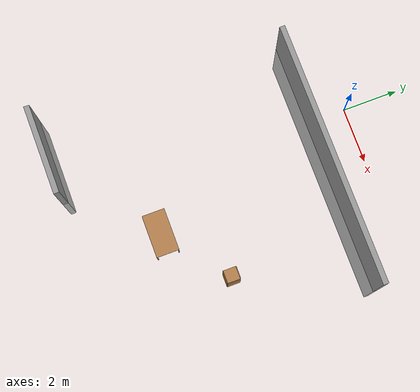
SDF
<sdf version="1.7">
 <world name="default">
  <light name="sun" type="directional">
   <pose>0 0 10 0 -0 0</pose>
   <diffuse>0.8 0.8 0.8 1</diffuse>
   <specular>0.2 0.2 0.2 1</specular>
   <attenuation>
    <range>1000</range>
    <constant>0.9</constant>
    <linear>0.01</linear>
    <quadratic>0.001</quadratic>
   </attenuation>
   <direction>-0.5 0.1 -0.9</direction>
   <spot><inner_angle>0</inner_angle><outer_angle>0</outer_angle><falloff>0</falloff></spot>
  </light>
  <gravity>0 0 -9.8</gravity>
  <magnetic_field>6e-06 2.3e-05 -4.2e-05</magnetic_field>
  <atmosphere type="adiabatic"/>
  <physics type="ode">
   <max_step_size>0.001</max_step_size>
   <real_time_factor>1</real_time_factor>
   <real_time_update_rate>1000</real_time_update_rate>
  </physics>
  <scene><ambient>0.4 0.4 0.4 1</ambient><background>0.7 0.7 0.7 1</background><shadows>1</shadows></scene>
  <spherical_coordinates>
   <surface_model>EARTH_WGS84</surface_model>
   <latitude_deg>0</latitude_deg>
   <longitude_deg>0</longitude_deg>
   <elevation>0</elevation>
   <heading_deg>0</heading_deg>
  </spherical_coordinates>
  <model name="ground_plane">
   <static>1</static>
   <link name="link">
    <collision name="collision">
     <geometry><plane><normal>0 0 1</normal><size>100 100</size></plane></geometry>
     <surface>
      <contact><collide_bitmask>65535</collide_bitmask></contact>
      <friction><ode><mu>100</mu><mu2>50</mu2></ode></friction>
     </surface>
    </collision>
    <visual name="visual">
     <cast_shadows>0</cast_shadows>
     <geometry><plane><normal>0 0 1</normal><size>100 100</size></plane></geometry>
     <material>
      <script><uri>file://media/materials/scripts/gazebo.material</uri><name>Gazebo/Grey</name></script>
     </material>
    </visual>
   </link>
  </model>
  <model name="table">
   <static>1</static>
   <link name="link">
    <collision name="surface">
     <pose>0 0 1 0 -0 0</pose>
     <geometry><box><size>1.5 0.8 0.03</size></box></geometry>
     <surface><friction><ode><mu>0.6</mu><mu2>0.6</mu2></ode></friction></surface>
    </collision>
    <visual name="visual1">
     <pose>0 0 1 0 -0 0</pose>
     <geometry><box><size>1.5 0.8 0.03</size></box></geometry>
     <material>
      <script><uri>file://media/materials/scripts/gazebo.material</uri><name>Gazebo/Wood</name></script>
     </material>
    </visual>
    <collision name="front_left_leg">
     <pose>0.68 0.38 0.5 0 -0 0</pose>
     <geometry><cylinder><radius>0.02</radius><length>1</length></cylinder></geometry>
    </collision>
    <visual name="front_left_leg">
     <pose>0.68 0.38 0.5 0 -0 0</pose>
     <geometry><cylinder><radius>0.02</radius><length>1</length></cylinder></geometry>
     <material>
      <script><uri>file://media/materials/scripts/gazebo.material</uri><name>Gazebo/Grey</name></script>
     </material>
    </visual>
    <collision name="front_right_leg">
     <pose>0.68 -0.38 0.5 0 -0 0</pose>
     <geometry><cylinder><radius>0.02</radius><length>1</length></cylinder></geometry>
    </collision>
    <visual name="front_right_leg">
     <pose>0.68 -0.38 0.5 0 -0 0</pose>
     <geometry><cylinder><radius>0.02</radius><length>1</length></cylinder></geometry>
     <material>
      <script><uri>file://media/materials/scripts/gazebo.material</uri><name>Gazebo/Grey</name></script>
     </material>
    </visual>
    <collision name="back_right_leg">
     <pose>-0.68 -0.38 0.5 0 -0 0</pose>
     <geometry><cylinder><radius>0.02</radius><length>1</length></cylinder></geometry>
    </collision>
    <visual name="back_right_leg">
     <pose>-0.68 -0.38 0.5 0 -0 0</pose>
     <geometry><cylinder><radius>0.02</radius><length>1</length></cylinder></geometry>
     <material>
      <script><uri>file://media/materials/scripts/gazebo.material</uri><name>Gazebo/Grey</name></script>
     </material>
    </visual>
    <collision name="back_left_leg">
     <pose>-0.68 0.38 0.5 0 -0 0</pose>
     <geometry><cylinder><radius>0.02</radius><length>1</length></cylinder></geometry>
    </collision>
    <visual name="back_left_leg">
     <pose>-0.68 0.38 0.5 0 -0 0</pose>
     <geometry><cylinder><radius>0.02</radius><length>1</length></cylinder></geometry>
     <material>
      <script><uri>file://media/materials/scripts/gazebo.material</uri><name>Gazebo/Grey</name></script>
     </material>
    </visual>
   </link>
   <pose>2.11283 -7.65134 0.265265 0 -0 0</pose>
  </model>
  <model name="cabinet">
   <static>1</static>
   <link name="cabinet_bottom_plate">
    <inertial>
     <pose>0 0 -1 0 -0 0</pose>
     <inertia><ixx>2.05</ixx><ixy>0</ixy><ixz>0</ixz><iyy>2.05</iyy><iyz>0</iyz><izz>2.05</izz></inertia>
     <mass>25</mass>
    </inertial>
    <collision name="cabinet_bottom_plate_geom">
     <pose>0 0 0.01 0 -0 0</pose>
     <geometry><box><size>0.45 0.45 0.02</size></box></geometry>
    </collision>
    <visual name="cabinet_bottom_plate_geom_visual">
     <pose>0 0 0.01 0 -0 0</pose>
     <geometry><box><size>0.45 0.45 0.02</size></box></geometry>
     <material>
      <script><uri>file://media/materials/scripts/gazebo.material</uri><name>Gazebo/Wood</name></script>
     </material>
    </visual>
    <collision name="cabinet_bottom_plate_geom_cabinet_back_plate">
     <pose>0.235 0 0.51 0 -0 0</pose>
     <geometry><box><size>0.02 0.45 1.02</size></box></geometry>
    </collision>
    <visual name="cabinet_bottom_plate_geom_cabinet_back_plate_visual">
     <pose>0.235 0 0.51 0 -0 0</pose>
     <geometry><box><size>0.02 0.45 1.02</size></box></geometry>
     <material>
      <script><uri>file://media/materials/scripts/gazebo.material</uri><name>Gazebo/Wood</name></script>
     </material>
    </visual>
    <collision name="cabinet_bottom_plate_geom_cabinet_left_plate">
     <pose>0 0.235 0.51 0 -0 0</pose>
     <geometry><box><size>0.45 0.02 1.02</size></box></geometry>
    </collision>
    <visual name="cabinet_bottom_plate_geom_cabinet_left_plate_visual">
     <pose>0 0.235 0.51 0 -0 0</pose>
     <geometry><box><size>0.45 0.02 1.02</size></box></geometry>
     <material>
      <script><uri>file://media/materials/scripts/gazebo.material</uri><name>Gazebo/Wood</name></script>
     </material>
    </visual>
    <collision name="cabinet_bottom_plate_geom_cabinet_middle_plate">
     <pose>0 0 0.51 0 -0 0</pose>
     <geometry><box><size>0.45 0.45 0.02</size></box></geometry>
    </collision>
    <visual name="cabinet_bottom_plate_geom_cabinet_middle_plate_visual">
     <pose>0 0 0.51 0 -0 0</pose>
     <geometry><box><size>0.45 0.45 0.02</size></box></geometry>
     <material>
      <script><uri>file://media/materials/scripts/gazebo.material</uri><name>Gazebo/Wood</name></script>
     </material>
    </visual>
    <collision name="cabinet_bottom_plate_geom_cabinet_right_plate">
     <pose>0 -0.235 0.51 0 -0 0</pose>
     <geometry><box><size>0.45 0.02 1.02</size></box></geometry>
    </collision>
    <visual name="cabinet_bottom_plate_geom_cabinet_right_plate_visual">
     <pose>0 -0.235 0.51 0 -0 0</pose>
     <geometry><box><size>0.45 0.02 1.02</size></box></geometry>
     <material>
      <script><uri>file://media/materials/scripts/gazebo.material</uri><name>Gazebo/Wood</name></script>
     </material>
    </visual>
    <collision name="cabinet_bottom_plate_geom_cabinet_top_plate">
     <pose>0 0 1.01 0 -0 0</pose>
     <geometry><box><size>0.45 0.45 0.02</size></box></geometry>
    </collision>
    <visual name="cabinet_bottom_plate_geom_cabinet_top_plate_visual">
     <pose>0 0 1.01 0 -0 0</pose>
     <geometry><box><size>0.45 0.45 0.02</size></box></geometry>
     <material>
      <script><uri>file://media/materials/scripts/gazebo.material</uri><name>Gazebo/Wood</name></script>
     </material>
    </visual>
   </link>
   <pose>4.26282 -5.89572 0.191258 0 -0 0</pose>
  </model>
  <model name="unit_box">
   <pose>6566.2 277.839 -422.043 -1.57011 -0.849148 -3.1413</pose>
   <link name="link">
    <inertial>
     <mass>1</mass>
     <inertia>
      <ixx>0.166667</ixx>
      <ixy>0</ixy>
      <ixz>0</ixz>
      <iyy>0.166667</iyy>
      <iyz>0</iyz>
      <izz>0.166667</izz>
     </inertia>
    </inertial>
    <collision name="collision"><geometry><box><size>0.00134141 1097.04 1</size></box></geometry></collision>
    <visual name="visual">
     <geometry><box><size>0.00134141 1097.04 1</size></box></geometry>
     <material>
      <script><name>Gazebo/Grey</name><uri>file://media/materials/scripts/gazebo.material</uri></script>
     </material>
    </visual>
   </link>
  </model>
  <model name="Untitled_0">
   <link name="link_0">
    <inertial>
     <mass>2.45679</mass>
     <inertia><ixx>3.11615</ixx><ixy>0</ixy><ixz>0</ixz><iyy>5.20355</iyy><iyz>0</iyz><izz>2.1033</izz></inertia>
    </inertial>
    <pose>-1.76957 -4.53759 0 0 -0 0</pose>
    <visual name="visual">
     <geometry><box><size>3.19915 0.197074 3.89638</size></box></geometry>
     <material>
      <lighting>1</lighting>
      <script><uri>file://media/materials/scripts/gazebo.material</uri><name>Gazebo/Grey</name></script>
      <shader type="pixel"/>
     </material>
    </visual>
    <collision name="collision">
     <geometry><box><size>3.19915 0.197074 3.89638</size></box></geometry>
     <surface>
      <friction>
       <ode><mu>1</mu><mu2>1</mu2><fdir1>0 0 0</fdir1><slip1>0</slip1><slip2>0</slip2></ode>
       <torsional>
        <coefficient>1</coefficient>
        <patch_radius>0</patch_radius>
        <surface_radius>0</surface_radius>
        <use_patch_radius>1</use_patch_radius>
        <ode><slip>0</slip></ode>
       </torsional>
      </friction>
      <bounce><restitution_coefficient>0</restitution_coefficient><threshold>1e+06</threshold></bounce>
      <contact>
       <collide_without_contact>0</collide_without_contact>
       <collide_without_contact_bitmask>1</collide_without_contact_bitmask>
       <collide_bitmask>1</collide_bitmask>
       <ode>
        <soft_cfm>0</soft_cfm>
        <soft_erp>0.2</soft_erp>
        <kp>1e+13</kp>
        <kd>1</kd>
        <max_vel>0.01</max_vel>
        <min_depth>0</min_depth>
       </ode>
       <bullet>
        <split_impulse>1</split_impulse>
        <split_impulse_penetration_threshold>-0.01</split_impulse_penetration_threshold>
        <soft_cfm>0</soft_cfm>
        <soft_erp>0.2</soft_erp>
        <kp>1e+13</kp>
        <kd>1</kd>
       </bullet>
      </contact>
     </surface>
    </collision>
   </link>
   <link name="link_1">
    <inertial>
     <mass>7.87337</mass>
     <inertia><ixx>12.6121</ixx><ixy>0</ixy><ixz>0</ixz><iyy>70.3885</iyy><iyz>0</iyz><izz>57.8244</izz></inertia>
    </inertial>
    <pose>1.76957 4.53764 0 0 -0 0</pose>
    <visual name="visual">
     <geometry><box><size>9.38589 0.191416 4.38016</size></box></geometry>
     <material>
      <lighting>1</lighting>
      <script><uri>file://media/materials/scripts/gazebo.material</uri><name>Gazebo/Grey</name></script>
      <shader type="pixel"/>
     </material>
    </visual>
    <collision name="collision">
     <geometry><box><size>9.38589 0.191416 4.38016</size></box></geometry>
     <surface>
      <friction>
       <ode><mu>1</mu><mu2>1</mu2><fdir1>0 0 0</fdir1><slip1>0</slip1><slip2>0</slip2></ode>
       <torsional>
        <coefficient>1</coefficient>
        <patch_radius>0</patch_radius>
        <surface_radius>0</surface_radius>
        <use_patch_radius>1</use_patch_radius>
        <ode><slip>0</slip></ode>
       </torsional>
      </friction>
      <bounce><restitution_coefficient>0</restitution_coefficient><threshold>1e+06</threshold></bounce>
      <contact>
       <collide_without_contact>0</collide_without_contact>
       <collide_without_contact_bitmask>1</collide_without_contact_bitmask>
       <collide_bitmask>1</collide_bitmask>
       <ode>
        <soft_cfm>0</soft_cfm>
        <soft_erp>0.2</soft_erp>
        <kp>1e+13</kp>
        <kd>1</kd>
        <max_vel>0.01</max_vel>
        <min_depth>0</min_depth>
       </ode>
       <bullet>
        <split_impulse>1</split_impulse>
        <split_impulse_penetration_threshold>-0.01</split_impulse_penetration_threshold>
        <soft_cfm>0</soft_cfm>
        <soft_erp>0.2</soft_erp>
        <kp>1e+13</kp>
        <kd>1</kd>
       </bullet>
      </contact>
     </surface>
    </collision>
   </link>
   <static>1</static>
   <allow_auto_disable>0</allow_auto_disable>
   <pose>-0.071806 -5.89659 0 0 -0 0</pose>
  </model>
 </world>
</sdf>
